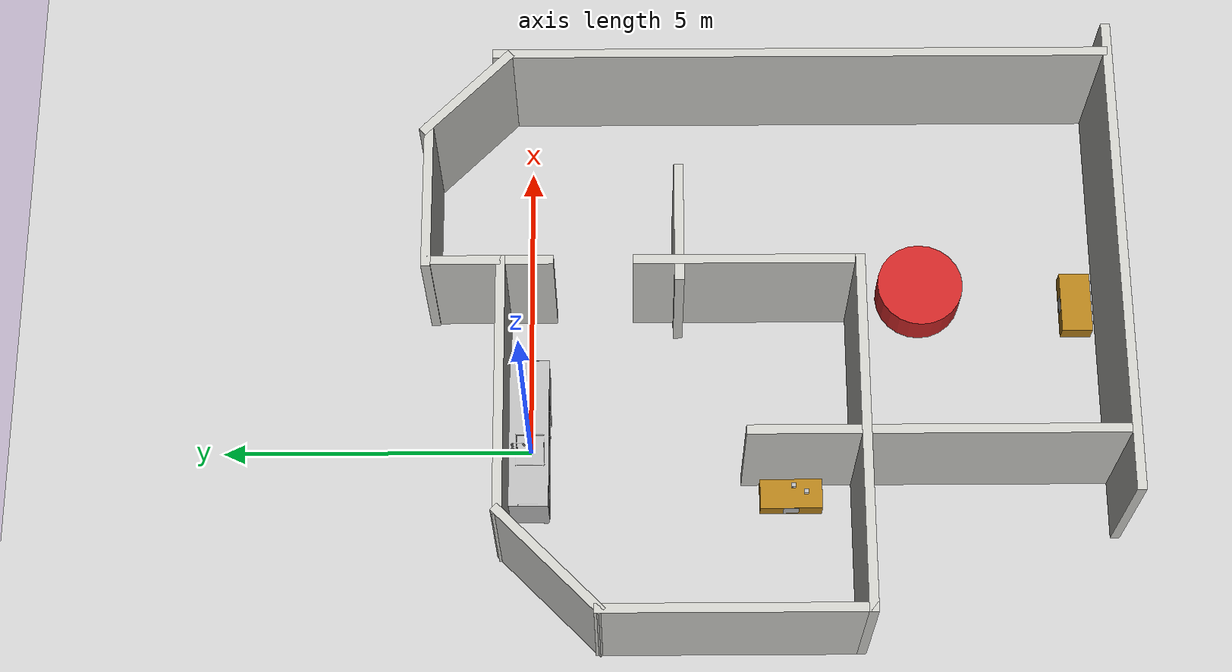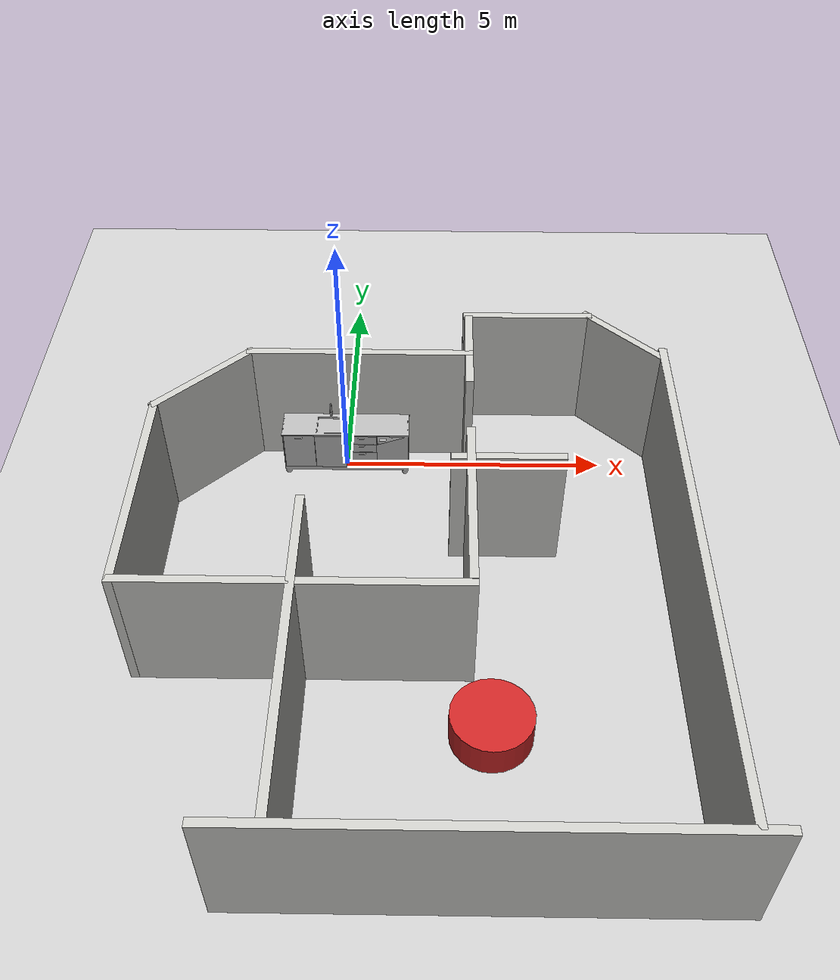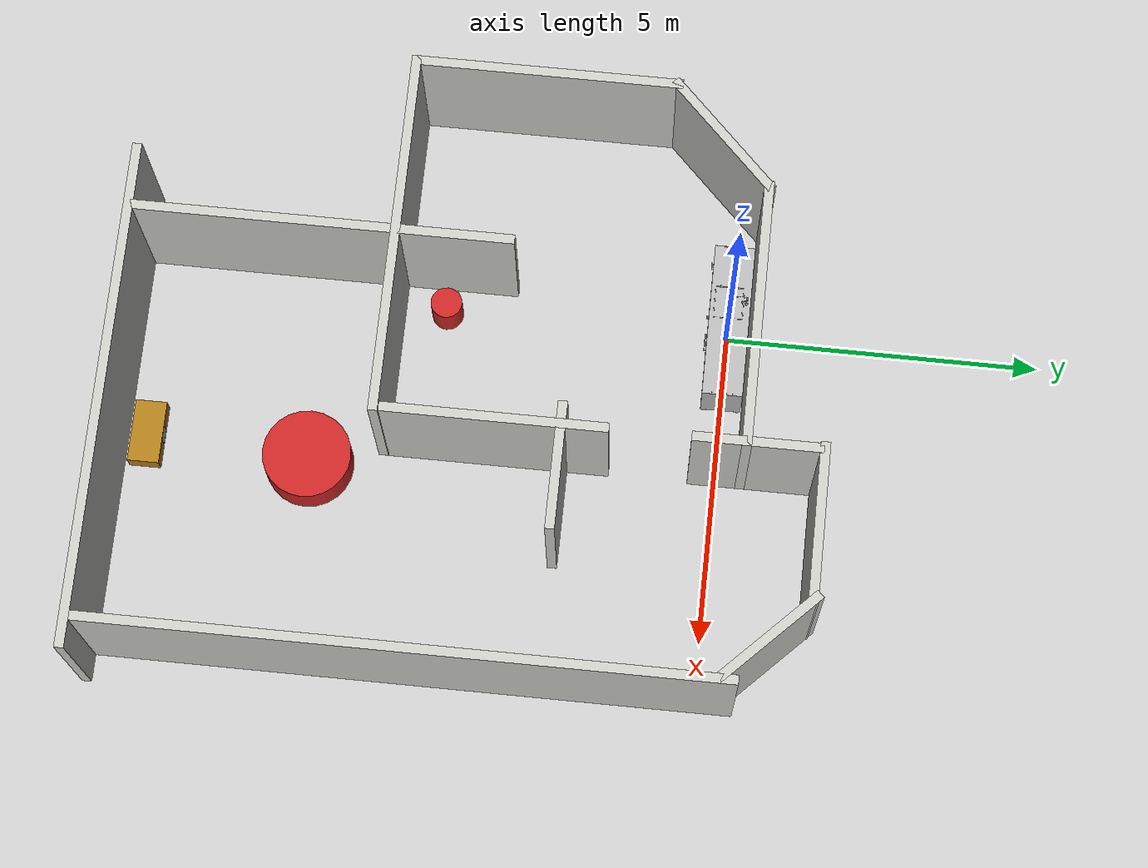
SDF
<sdf version="1.7">
 <world name="default">
  <model name="ground_plane">
   <static>1</static>
   <link name="link">
    <collision name="collision">
     <geometry><plane><normal>0 0 1</normal><size>100 100</size></plane></geometry>
     <surface>
      <contact><collide_bitmask>65535</collide_bitmask></contact>
      <friction><ode><mu>100</mu><mu2>50</mu2></ode></friction>
     </surface>
    </collision>
    <visual name="visual">
     <cast_shadows>0</cast_shadows>
     <geometry><plane><normal>0 0 1</normal><size>100 100</size></plane></geometry>
     <material>
      <script><uri>file://media/materials/scripts/gazebo.material</uri><name>Gazebo/Grey</name></script>
     </material>
    </visual>
   </link>
  </model>
  <light name="sun" type="directional">
   <pose>0 0 10 0 -0 0</pose>
   <diffuse>0.8 0.8 0.8 1</diffuse>
   <specular>0.2 0.2 0.2 1</specular>
   <attenuation>
    <range>1000</range>
    <constant>0.9</constant>
    <linear>0.01</linear>
    <quadratic>0.001</quadratic>
   </attenuation>
   <direction>-0.5 0.1 -0.9</direction>
   <spot><inner_angle>0</inner_angle><outer_angle>0</outer_angle><falloff>0</falloff></spot>
  </light>
  <gravity>0 0 -9.81</gravity>
  <magnetic_field>6e-06 2.3e-05 -4.2e-05</magnetic_field>
  <atmosphere type="adiabatic"/>
  <physics type="ode">
   <max_step_size>0.001</max_step_size>
   <real_time_factor>1</real_time_factor>
   <real_time_update_rate>1000</real_time_update_rate>
  </physics>
  <scene><ambient>0.4 0.4 0.4 1</ambient><background>0.7 0.7 0.7 1</background><shadows>1</shadows></scene>
  <spherical_coordinates>
   <surface_model>EARTH_WGS84</surface_model>
   <latitude_deg>0</latitude_deg>
   <longitude_deg>0</longitude_deg>
   <elevation>0</elevation>
   <heading_deg>0</heading_deg>
  </spherical_coordinates>
  <model name="sink_furniture">
   <joint name="base_joint" type="fixed">
    <pose relative_to="__model__">0 0 0.01 0 -0 0</pose>
    <parent>world</parent>
    <child>base_link</child>
   </joint>
   <link name="base_link">
    <pose relative_to="base_joint">0 0 0 0 -0 0</pose>
    <inertial>
     <pose>0.341839 0.004907 0.283661 0 -0 0</pose>
     <mass>80</mass>
     <inertia>
      <ixx>13.1429</ixx>
      <ixy>-0.127112</ixy>
      <ixz>-12.9504</ixz>
      <iyy>28.0802</iyy>
      <iyz>-0.0874853</iyz>
      <izz>17.9537</izz>
     </inertia>
    </inertial>
    <collision name="base_link_collision">
     <pose>0 0 0 1.5714 -0 0</pose>
     <geometry>
      <mesh><scale>100 100 100</scale><uri>model://sink_furniture/meshes/kitchen_only_kitchen.obj</uri></mesh>
     </geometry>
    </collision>
    <collision name="base_link_fixed_joint_lump__washer_link_collision_1">
     <pose>-0.09 0.001 0.581 1.5714 -0 0</pose>
     <geometry>
      <mesh><scale>1 1 1</scale><uri>model://sink_furniture/meshes/kitchen_only_lavadora.obj</uri></mesh>
     </geometry>
    </collision>
    <visual name="base_link_visual">
     <pose>0 0 0 1.5714 -0 0</pose>
     <geometry>
      <mesh><scale>100 100 100</scale><uri>model://sink_furniture/meshes/kitchen_only_kitchen.obj</uri></mesh>
     </geometry>
    </visual>
    <visual name="base_link_fixed_joint_lump__washer_link_visual_1">
     <pose>-0.09 0.001 0.581 1.5714 -0 0</pose>
     <geometry>
      <mesh><scale>1 1 1</scale><uri>model://sink_furniture/meshes/kitchen_only_lavadora.obj</uri></mesh>
     </geometry>
    </visual>
   </link>
   <joint name="dishrack_1_joint" type="prismatic">
    <pose relative_to="base_link">-0.897 0.035 0.49 0 -0 0</pose>
    <parent>base_link</parent>
    <child>dishrack_1_link</child>
    <axis>
     <xyz>0 -1 0</xyz>
     <limit><lower>0</lower><upper>0.5</upper><effort>0</effort><velocity>0</velocity></limit>
     <dynamics>
      <damping>0.5</damping>
      <friction>1</friction>
      <spring_reference>0</spring_reference>
      <spring_stiffness>0</spring_stiffness>
     </dynamics>
    </axis>
   </joint>
   <link name="dishrack_1_link">
    <pose relative_to="dishrack_1_joint">0 0 0 0 -0 0</pose>
    <inertial>
     <pose>-0 0.001017 0.024848 0 -0 0</pose>
     <mass>5</mass>
     <inertia>
      <ixx>0.0896811</ixx>
      <ixy>-4.20102e-09</ixy>
      <ixz>-2.01219e-09</ixz>
      <iyy>0.141374</iyy>
      <iyz>-0.0042403</iyz>
      <izz>0.0985203</izz>
     </inertia>
    </inertial>
    <collision name="dishrack_1_link_collision">
     <pose>0 0 0 1.5714 -0 0</pose>
     <geometry>
      <mesh>
       <scale>1 1 1</scale>
       <uri>model://sink_furniture/meshes/kitchen_only_parte_de_abajo_lavavajillas.obj</uri>
      </mesh>
     </geometry>
    </collision>
    <collision name="dishrack_1_link_fixed_joint_lump__silverware_link_collision_1">
     <pose>0 -0.01 0.05 1.5714 -0 0</pose>
     <geometry>
      <mesh>
       <scale>1 1 1</scale>
       <uri>model://sink_furniture/meshes/kitchen_only_cubiertos_lavavajillas.obj</uri>
      </mesh>
     </geometry>
    </collision>
    <visual name="dishrack_1_link_visual">
     <pose>0 0 0 1.5714 -0 0</pose>
     <geometry>
      <mesh>
       <scale>1 1 1</scale>
       <uri>model://sink_furniture/meshes/kitchen_only_parte_de_abajo_lavavajillas.obj</uri>
      </mesh>
     </geometry>
    </visual>
    <visual name="dishrack_1_link_fixed_joint_lump__silverware_link_visual_1">
     <pose>0 -0.01 0.05 1.5714 -0 0</pose>
     <geometry>
      <mesh>
       <scale>1 1 1</scale>
       <uri>model://sink_furniture/meshes/kitchen_only_cubiertos_lavavajillas.obj</uri>
      </mesh>
     </geometry>
    </visual>
   </link>
   <joint name="dishrack_2_joint" type="prismatic">
    <pose relative_to="base_link">-0.897 0.035 0.792 0 -0 0</pose>
    <parent>base_link</parent>
    <child>dishrack_2_link</child>
    <axis>
     <xyz>0 -1 0</xyz>
     <limit><lower>0</lower><upper>0.5</upper><effort>0</effort><velocity>0</velocity></limit>
     <dynamics>
      <damping>0.5</damping>
      <friction>1</friction>
      <spring_reference>0</spring_reference>
      <spring_stiffness>0</spring_stiffness>
     </dynamics>
    </axis>
   </joint>
   <link name="dishrack_2_link">
    <pose relative_to="dishrack_2_joint">0 0 0 0 -0 0</pose>
    <inertial>
     <pose>0.008706 -0.004417 0.026342 0 -0 0</pose>
     <mass>3</mass>
     <inertia>
      <ixx>0.0695101</ixx>
      <ixy>2.372e-05</ixy>
      <ixz>4.623e-05</ixz>
      <iyy>0.128744</iyy>
      <iyz>0.00035407</iyz>
      <izz>0.0707099</izz>
     </inertia>
    </inertial>
    <collision name="dishrack_2_link_collision">
     <pose>0 0 0 1.5714 -0 0</pose>
     <geometry>
      <mesh>
       <scale>1 1 1</scale>
       <uri>model://sink_furniture/meshes/kitchen_only_parte_de_arriba_lavavajillas.obj</uri>
      </mesh>
     </geometry>
    </collision>
    <visual name="dishrack_2_link_visual">
     <pose>0 0 0 1.5714 -0 0</pose>
     <geometry>
      <mesh>
       <scale>1 1 1</scale>
       <uri>model://sink_furniture/meshes/kitchen_only_parte_de_arriba_lavavajillas.obj</uri>
      </mesh>
     </geometry>
    </visual>
   </link>
   <joint name="door_1_joint" type="revolute">
    <pose relative_to="base_link">-0.596 -0.325 0.594 0 -0 0</pose>
    <parent>base_link</parent>
    <child>door_1_link</child>
    <axis>
     <xyz>0 0 -1</xyz>
     <limit><lower>0</lower><upper>2</upper><effort>0</effort><velocity>0</velocity></limit>
     <dynamics>
      <damping>0.5</damping>
      <friction>1</friction>
      <spring_reference>0</spring_reference>
      <spring_stiffness>0</spring_stiffness>
     </dynamics>
    </axis>
   </joint>
   <link name="door_1_link">
    <pose relative_to="door_1_joint">0 0 0 0 -0 0</pose>
    <inertial>
     <pose>0.234309 0.296772 0.013344 0 -0 0</pose>
     <mass>3</mass>
     <inertia>
      <ixx>0.146762</ixx>
      <ixy>-0.00813386</ixy>
      <ixz>-0.00130403</ixz>
      <iyy>0.079376</iyy>
      <iyz>-0.00166311</iyz>
      <izz>0.225484</izz>
     </inertia>
    </inertial>
    <collision name="door_1_link_collision">
     <pose>0.3 0 0 1.5714 -0 0</pose>
     <geometry>
      <mesh><scale>1 1 1</scale><uri>model://sink_furniture/meshes/kitchen_only_armario_lavamanos.obj</uri></mesh>
     </geometry>
    </collision>
    <visual name="door_1_link_visual">
     <pose>0.3 0 0 1.5714 -0 0</pose>
     <geometry>
      <mesh><scale>1 1 1</scale><uri>model://sink_furniture/meshes/kitchen_only_armario_lavamanos.obj</uri></mesh>
     </geometry>
    </visual>
   </link>
   <joint name="door_2_joint" type="revolute">
    <pose relative_to="base_link">-0.899 -0.293 0.34 0 -0 0</pose>
    <parent>base_link</parent>
    <child>door_2_link</child>
    <axis>
     <xyz>1 0 0</xyz>
     <limit><lower>0</lower><upper>1.6</upper><effort>0</effort><velocity>0</velocity></limit>
     <dynamics>
      <damping>0.5</damping>
      <friction>1</friction>
      <spring_reference>0</spring_reference>
      <spring_stiffness>0</spring_stiffness>
     </dynamics>
    </axis>
   </joint>
   <link name="door_2_link">
    <pose relative_to="door_2_joint">0 0 0 0 -0 0</pose>
    <inertial>
     <pose>0 0.354086 0.044429 0 -0 0</pose>
     <mass>8</mass>
     <inertia>
      <ixx>0.430657</ixx>
      <ixy>0</ixy>
      <ixz>0</ixz>
      <iyy>0.231769</iyy>
      <iyz>-0.00532904</iyz>
      <izz>0.650277</izz>
     </inertia>
    </inertial>
    <collision name="door_2_link_collision">
     <pose>0 0 0.254 1.5714 -0 0</pose>
     <geometry>
      <mesh><scale>1 1 1</scale><uri>model://sink_furniture/meshes/kitchen_only_puerta_lavavajillas.obj</uri></mesh>
     </geometry>
    </collision>
    <visual name="door_2_link_visual">
     <pose>0 0 0.254 1.5714 -0 0</pose>
     <geometry>
      <mesh><scale>1 1 1</scale><uri>model://sink_furniture/meshes/kitchen_only_puerta_lavavajillas.obj</uri></mesh>
     </geometry>
    </visual>
   </link>
   <joint name="drawer_1_joint" type="prismatic">
    <pose relative_to="base_link">0.305 -0.068 0.895 0 -0 0</pose>
    <parent>base_link</parent>
    <child>drawer_1_link</child>
    <axis>
     <xyz>0 -1 0</xyz>
     <limit><lower>0</lower><upper>0.4</upper><effort>100</effort><velocity>100</velocity></limit>
     <dynamics>
      <damping>0.5</damping>
      <friction>1</friction>
      <spring_reference>0</spring_reference>
      <spring_stiffness>0</spring_stiffness>
     </dynamics>
    </axis>
   </joint>
   <link name="drawer_1_link">
    <pose relative_to="drawer_1_joint">0 0 0 0 -0 0</pose>
    <inertial>
     <pose>0.005449 0.058284 0.255974 0 -0 0</pose>
     <mass>5</mass>
     <inertia>
      <ixx>0.133959</ixx>
      <ixy>6e-06</ixy>
      <ixz>0.00125108</ixz>
      <iyy>0.259147</iyy>
      <iyz>-0.00124005</iyz>
      <izz>0.149073</izz>
     </inertia>
    </inertial>
    <collision name="drawer_1_link_collision">
     <pose>0 0 0 1.5714 -0 0</pose>
     <geometry>
      <mesh><scale>1 1 1</scale><uri>model://sink_furniture/meshes/kitchen_only_cajon_1.obj</uri></mesh>
     </geometry>
    </collision>
    <visual name="drawer_1_link_visual">
     <pose>0 0 0 1.5714 -0 0</pose>
     <geometry>
      <mesh><scale>1 1 1</scale><uri>model://sink_furniture/meshes/kitchen_only_cajon_1.obj</uri></mesh>
     </geometry>
    </visual>
   </link>
   <joint name="drawer_2_joint" type="prismatic">
    <pose relative_to="base_link">0.305 -0.068 0.694 0 -0 0</pose>
    <parent>base_link</parent>
    <child>drawer_2_link</child>
    <axis>
     <xyz>0 -1 0</xyz>
     <limit><lower>0</lower><upper>0.4</upper><effort>0</effort><velocity>0</velocity></limit>
     <dynamics><spring_reference>0</spring_reference><spring_stiffness>0</spring_stiffness></dynamics>
    </axis>
   </joint>
   <link name="drawer_2_link">
    <pose relative_to="drawer_2_joint">0 0 0 0 -0 0</pose>
    <inertial>
     <pose>0.005449 0.060122 0.255974 0 -0 0</pose>
     <mass>5</mass>
     <inertia>
      <ixx>0.133965</ixx>
      <ixy>5.99e-06</ixy>
      <ixz>0.00125106</ixz>
      <iyy>0.259148</iyy>
      <iyz>-0.00126118</iyz>
      <izz>0.149077</izz>
     </inertia>
    </inertial>
    <collision name="drawer_2_link_collision">
     <pose>0 0 0 1.5714 -0 0</pose>
     <geometry>
      <mesh><scale>1 1 1</scale><uri>model://sink_furniture/meshes/kitchen_only_cajon_2.obj</uri></mesh>
     </geometry>
    </collision>
    <visual name="drawer_2_link_visual">
     <pose>0 0 0 1.5714 -0 0</pose>
     <geometry>
      <mesh><scale>1 1 1</scale><uri>model://sink_furniture/meshes/kitchen_only_cajon_2.obj</uri></mesh>
     </geometry>
    </visual>
   </link>
   <joint name="drawer_3_joint" type="prismatic">
    <pose relative_to="base_link">0.311 -0.068 0.392 0 -0 0</pose>
    <parent>base_link</parent>
    <child>drawer_3_link</child>
    <axis>
     <xyz>0 -1 0</xyz>
     <limit><lower>0</lower><upper>0.4</upper><effort>0</effort><velocity>0</velocity></limit>
     <dynamics>
      <damping>0.5</damping>
      <friction>1</friction>
      <spring_reference>0</spring_reference>
      <spring_stiffness>0</spring_stiffness>
     </dynamics>
    </axis>
   </joint>
   <link name="drawer_3_link">
    <pose relative_to="drawer_3_joint">0 0 0 0 -0 0</pose>
    <inertial>
     <pose>0.005449 0.146757 0.255974 0 -0 0</pose>
     <mass>7</mass>
     <inertia>
      <ixx>0.229778</ixx>
      <ixy>0.00021958</ixy>
      <ixz>0.00169859</ixz>
      <iyy>0.358769</iyy>
      <iyz>-0.0238841</iyz>
      <izz>0.256006</izz>
     </inertia>
    </inertial>
    <collision name="drawer_3_link_collision">
     <pose>0 0 0 1.5714 -0 0</pose>
     <geometry>
      <mesh><scale>1 1 1</scale><uri>model://sink_furniture/meshes/kitchen_only_cajon_grande.obj</uri></mesh>
     </geometry>
    </collision>
    <visual name="drawer_3_link_visual">
     <pose>0 0 0 1.5714 -0 0</pose>
     <geometry>
      <mesh><scale>1 1 1</scale><uri>model://sink_furniture/meshes/kitchen_only_cajon_grande.obj</uri></mesh>
     </geometry>
    </visual>
   </link>
  </model>
  <model name="kitchen_no_sink_walls">
   <pose>-0.487707 -2.40386 0 0 -0 0</pose>
   <link name="Wall_0">
    <collision name="Wall_0_Collision">
     <geometry><box><size>4.27 0.15 2.5</size></box></geometry>
     <pose>0 0 1.25 0 -0 0</pose>
    </collision>
    <visual name="Wall_0_Visual">
     <pose>0 0 1.25 0 -0 0</pose>
     <geometry><box><size>4.27 0.15 2.5</size></box></geometry>
     <material>
      <script><uri>file://media/materials/scripts/gazebo.material</uri><name>Gazebo/CeilingTiled</name></script>
      <ambient>1 1 1 1</ambient>
     </material>
     <meta><layer>0</layer></meta>
    </visual>
    <pose>-2.82197 -0.790533 0 0 -0 1.5708</pose>
   </link>
   <link name="Wall_11">
    <collision name="Wall_11_Collision">
     <geometry><box><size>2.34557 0.15 2.5</size></box></geometry>
     <pose>0 0 1.25 0 -0 0</pose>
    </collision>
    <visual name="Wall_11_Visual">
     <pose>0 0 1.25 0 -0 0</pose>
     <geometry><box><size>2.34557 0.15 2.5</size></box></geometry>
     <material>
      <script><uri>file://media/materials/scripts/gazebo.material</uri><name>Gazebo/CeilingTiled</name></script>
      <ambient>1 1 1 1</ambient>
     </material>
     <meta><layer>0</layer></meta>
    </visual>
    <pose>-2.04447 2.04447 0 0 -0 0.783788</pose>
   </link>
   <link name="Wall_4">
    <collision name="Wall_4_Collision">
     <geometry><box><size>5.825 0.15 2.5</size></box></geometry>
     <pose>0 0 1.25 0 -0 0</pose>
    </collision>
    <visual name="Wall_4_Visual">
     <pose>0 0 1.25 0 -0 0</pose>
     <geometry><box><size>5.825 0.15 2.5</size></box></geometry>
     <material>
      <script><uri>file://media/materials/scripts/gazebo.material</uri><name>Gazebo/CeilingTiled</name></script>
      <ambient>1 1 1 1</ambient>
     </material>
     <meta><layer>0</layer></meta>
    </visual>
    <pose>0.015533 -2.85053 0 0 -0 0</pose>
   </link>
   <link name="Wall_7">
    <collision name="Wall_7_Collision">
     <geometry><box><size>3.5 0.15 2.5</size></box></geometry>
     <pose>-1 0 1.25 0 -0 0</pose>
    </collision>
    <visual name="Wall_7_Visual">
     <pose>-1 0 1.25 0 -0 0</pose>
     <geometry><box><size>3.5 0.15 2.5</size></box></geometry>
     <material>
      <script><uri>file://media/materials/scripts/gazebo.material</uri><name>Gazebo/CeilingTiled</name></script>
      <ambient>1 1 1 1</ambient>
     </material>
     <meta><layer>0</layer></meta>
    </visual>
    <pose>2.85303 -0.015533 0 0 -0 1.5708</pose>
   </link>
   <link name="Wall_8">
    <collision name="Wall_8_Collision">
     <geometry><box><size>2 0.15 2.5</size></box></geometry>
     <pose>3 0 1.25 0 -0 0</pose>
    </collision>
    <visual name="Wall_8_Visual">
     <pose>3 0 1.25 0 -0 0</pose>
     <geometry><box><size>2 0.15 2.5</size></box></geometry>
     <material>
      <script><uri>file://media/materials/scripts/gazebo.material</uri><name>Gazebo/CeilingTiled</name></script>
      <ambient>1 1 1 1</ambient>
     </material>
     <meta><layer>0</layer></meta>
    </visual>
    <pose>2.85303 -0.015533 0 0 -0 1.5708</pose>
   </link>
   <link name="Wall_9">
    <collision name="Wall_9_Collision">
     <geometry><box><size>4.27 0.15 2.5</size></box></geometry>
     <pose>0 0 1.25 0 -0 0</pose>
    </collision>
    <visual name="Wall_9_Visual">
     <pose>0 0 1.25 0 -0 0</pose>
     <geometry><box><size>4.27 0.15 2.5</size></box></geometry>
     <material>
      <script><uri>file://media/materials/scripts/gazebo.material</uri><name>Gazebo/CeilingTiled</name></script>
      <ambient>1 1 1 1</ambient>
     </material>
     <meta><layer>0</layer></meta>
    </visual>
    <pose>0.793033 2.81947 0 0 -0 3.14159</pose>
   </link>
   <link name="Wall_20">
    <collision name="Wall_20_Collision">
     <geometry><box><size>10 0.15 2.5</size></box></geometry>
     <pose>0 0 1.25 0 -0 0</pose>
    </collision>
    <visual name="Wall_20_Visual">
     <pose>0 0 1.25 0 -0 0</pose>
     <geometry><box><size>10 0.15 2.5</size></box></geometry>
     <material>
      <script><uri>file://media/materials/scripts/gazebo.material</uri><name>Gazebo/CeilingTiled</name></script>
      <ambient>1 1 1 1</ambient>
     </material>
     <meta><layer>0</layer></meta>
    </visual>
    <pose>6.5 -2.0 0 0 0 1.5708</pose>
   </link>
   <link name="Wall_21">
    <collision name="Wall_21_Collision">
     <geometry><box><size>2.5 0.15 2.5</size></box></geometry>
     <pose>0 0 1.25 0 -0 0</pose>
    </collision>
    <visual name="Wall_21_Visual">
     <pose>0 0 1.25 0 -0 0</pose>
     <geometry><box><size>2.5 0.15 2.5</size></box></geometry>
     <material>
      <script><uri>file://media/materials/scripts/gazebo.material</uri><name>Gazebo/CeilingTiled</name></script>
      <ambient>1 1 1 1</ambient>
     </material>
     <meta><layer>0</layer></meta>
    </visual>
    <pose>4 4.0 0 0 -0 0</pose>
   </link>
   <link name="Wall_22">
    <collision name="Wall_22_Collision">
     <geometry><box><size>2 0.15 2.5</size></box></geometry>
     <pose>0 0 1.25 0 -0 0</pose>
    </collision>
    <visual name="Wall_22_Visual">
     <pose>0 0 1.25 0 -0 0</pose>
     <geometry><box><size>2 0.15 2.5</size></box></geometry>
     <material>
      <script><uri>file://media/materials/scripts/gazebo.material</uri><name>Gazebo/CeilingTiled</name></script>
      <ambient>1 1 1 1</ambient>
     </material>
     <meta><layer>0</layer></meta>
    </visual>
    <pose>5.8 3.4 0 0 -0 -0.783788</pose>
   </link>
   <link name="Wall_23">
    <collision name="Wall_23_Collision">
     <geometry><box><size>8.0 0.15 2.5</size></box></geometry>
     <pose>0 0 1.25 0 -0 0</pose>
    </collision>
    <visual name="Wall_23_Visual">
     <pose>0 0 1.25 0 -0 0</pose>
     <geometry><box><size>8.0 0.15 2.5</size></box></geometry>
     <material>
      <script><uri>file://media/materials/scripts/gazebo.material</uri><name>Gazebo/CeilingTiled</name></script>
      <ambient>1 1 1 1</ambient>
     </material>
     <meta><layer>0</layer></meta>
    </visual>
    <pose>3 -7.0 0 0 -0 0</pose>
   </link>
   <link name="Wall_24">
    <collision name="Wall_24_Collision">
     <geometry><box><size>6 0.15 2.5</size></box></geometry>
     <pose>0 0 1.25 0 -0 0</pose>
    </collision>
    <visual name="Wall_24_Visual">
     <pose>0 0 1.25 0 -0 0</pose>
     <geometry><box><size>6 0.15 2.5</size></box></geometry>
     <material>
      <script><uri>file://media/materials/scripts/gazebo.material</uri><name>Gazebo/CeilingTiled</name></script>
      <ambient>1 1 1 1</ambient>
     </material>
     <meta><layer>0</layer></meta>
    </visual>
    <pose>0 -4.0 0 0 -0 1.5709</pose>
   </link>
   <link name="Wall_30">
    <collision name="Wall_30_Collision">
     <geometry><box><size>2.0 0.15 2.5</size></box></geometry>
     <pose>0 0 1.25 0 -0 0</pose>
    </collision>
    <visual name="Wall_30_Visual">
     <pose>0 0 1.25 0 -0 0</pose>
     <geometry><box><size>2.0 0.15 2.5</size></box></geometry>
     <material>
      <script><uri>file://media/materials/scripts/gazebo.material</uri><name>Gazebo/CeilingTiled</name></script>
      <ambient>1 1 1 1</ambient>
     </material>
     <meta><layer>0</layer></meta>
    </visual>
    <pose>3.5 0.0 0 0 -0 0</pose>
   </link>
   <static>1</static>
  </model>
  <include>
   <uri>model://env_exam_pick_surface</uri>
   <pose>-0.8 -4.2 0.15 0 0 1.5709</pose>
   <static>1</static>
  </include>
  <include><uri>model://env_exam_place_surface</uri><pose>2.5 -9 0.15 0 0 0</pose><static>1</static></include>
  <include><uri>model://env_exam_cylinder1</uri><pose>.0 -4.5 0.1 0 0 0</pose><static>1</static></include>
  <include><uri>model://env_exam_cylinder2</uri><pose>2.7 -6.4 0.1 0 0 0</pose><static>1</static></include>
  <include><uri>model://aruco_cube_exam_id63</uri><pose>-0.9 -4.2 1.0 0 0 0</pose><static>0</static></include>
  <include><uri>model://aruco_cube_exam_id582</uri><pose>-1.0 -4.4 1.0 0 0 0</pose><static>0</static></include>
 </world>
</sdf>

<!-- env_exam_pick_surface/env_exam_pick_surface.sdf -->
<sdf version="1.4">
  <model name="env_exam_pick_surface">
    <static>true</static>

    <link name="link">
      <!-- Original pick surface inertial -->
      <inertial>
        <mass>1.0</mass>
        <inertia>
          <ixx>0.083</ixx>
          <ixy>0.0</ixy>
          <ixz>0.0</ixz>
          <iyy>0.083</iyy>
          <iyz>0.0</iyz>
          <izz>0.083</izz>
        </inertia>
      </inertial>

      <!-- Original pick surface collision -->
      <collision name="pick_surface_collision">
        <geometry>
          <box>
            <size>0.5 0.5 0.3</size>
          </box>
        </geometry>
      </collision>

      <!-- Original pick surface visual -->
      <visual name="pick_surface_visual">
        <material>
          <ambient>0.7 0.5 0.1 1</ambient>
          <diffuse>0.7 0.5 0.1 1</diffuse>
          <specular>0.5 0.5 0.5 1</specular>
          <emissive>0 0 0 1</emissive>
        </material>
        <geometry>
          <box>
            <size>1.0 0.5 0.3</size>
          </box>
        </geometry>
      </visual>

      <!-- ArUco marker mounted on one lateral side (+X face) -->
      <!-- Box visual for the marker -->
      <visual name="aruco_visual">
        <pose>0.0 0.25 0.0 1.5708 0 0</pose>
        <geometry>
          <box>
            <size>0.25 0.25 0.001</size>
          </box>
        </geometry>
        <material>
          <script>
	    <uri>model://aruco_marker_original_26/material/scripts</uri>
	    <uri>model://aruco_marker_original_26/material/textures</uri>
            <name>Aruco/aruco_marker_original_26</name>
          </script>
        </material>
      </visual>

      <!-- Collision for the marker -->
      <collision name="aruco_collision">
        <pose>0.5005 0 0.15 1.5708 0 0</pose>
        <geometry>
          <box>
            <size>0.25 0.25 0.001</size>
          </box>
        </geometry>
        <surface>
          <bounce/>
          <friction>
            <ode/>
          </friction>
          <contact>
            <ode/>
          </contact>
        </surface>
      </collision>

    </link>
  </model>
</sdf>

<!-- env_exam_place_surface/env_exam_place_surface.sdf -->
<sdf version="1.4">
  <model name="env_exam_place_surface">
    <static>true</static>

    <link name="link">
      <!-- Original pick surface inertial -->
      <inertial>
        <mass>1.0</mass>
        <inertia>
          <ixx>0.083</ixx>
          <ixy>0.0</ixy>
          <ixz>0.0</ixz>
          <iyy>0.083</iyy>
          <iyz>0.0</iyz>
          <izz>0.083</izz>
        </inertia>
      </inertial>

      <collision name="place_surface_collision">
        <geometry>
          <box>
            <size>0.5 0.5 0.3</size>
          </box>
        </geometry>
      </collision>

      <visual name="place_surface_visual">
        <material>
          <ambient>0.7 0.5 0.1 1</ambient>
          <diffuse>0.7 0.5 0.1 1</diffuse>
          <specular>0.5 0.5 0.5 1</specular>
          <emissive>0 0 0 1</emissive>
        </material>
        <geometry>
          <box>
            <size>1.0 0.5 0.3</size>
          </box>
        </geometry>
      </visual>

      <!-- ArUco marker mounted on one lateral side (+X face) -->
      <!-- Box visual for the marker -->
      <visual name="aruco_visual">
        <pose>0.0 0.25 0.0 1.5708 0 0</pose>
        <geometry>
          <box>
            <size>0.25 0.25 0.001</size>
          </box>
        </geometry>
        <material>
          <script>
	    <uri>model://aruco_marker_original_238/material/scripts</uri>
	    <uri>model://aruco_marker_original_238/material/textures</uri>
            <name>Aruco/aruco_marker_original_238</name>
          </script>
        </material>
      </visual>

      <!-- Collision for the marker -->
      <collision name="aruco_collision">
        <pose>0.5005 0 0.15 1.5708 0 0</pose>
        <geometry>
          <box>
            <size>0.25 0.25 0.001</size>
          </box>
        </geometry>
        <surface>
          <bounce/>
          <friction>
            <ode/>
          </friction>
          <contact>
            <ode/>
          </contact>
        </surface>
      </collision>

    </link>
  </model>
</sdf>

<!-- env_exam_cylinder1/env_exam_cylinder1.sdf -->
<sdf version="1.4">
  <model name="env_exam_cylinder1">
    <static>true</static>
    <link name="link">

    <gravity>0</gravity>

      <inertial>
        <mass>1.0</mass>
        <inertia>
          <ixx>0.00036395833</ixx> <ixy>0.0</ixy> <ixz>0.0</ixz>
          <iyy>0.00036395833</iyy> <iyz>0.0</iyz> <izz>0.0006125</izz>
        </inertia>
      </inertial>
      <visual name="visual">
        <geometry>
          <cylinder>
            <radius>0.25</radius>
            <length>1.0</length>
          </cylinder>
        </geometry>
        <material>
          <script>
            <uri>file://media/materials/scripts/gazebo.material</uri>
            <name>Gazebo/Red</name>
          </script>
        </material>
      </visual>
      <collision name="collision">
        <geometry>
          <cylinder>
            <radius>0.25</radius>
            <length>1.0</length>
        </cylinder>
        </geometry>
        <surface>
          <friction>
            <ode>
              <mu>0.0</mu>
              <mu2>0.0</mu2>
            </ode>
          </friction>
        </surface>
      </collision>

    </link>
  </model>
</sdf>

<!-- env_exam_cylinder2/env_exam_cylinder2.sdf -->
<sdf version="1.4">
  <model name="env_exam_cylinder2">
    <static>true</static>
    <link name="link">

    <gravity>0</gravity>

      <inertial>
        <mass>1.0</mass>
        <inertia>
          <ixx>0.00036395833</ixx> <ixy>0.0</ixy> <ixz>0.0</ixz>
          <iyy>0.00036395833</iyy> <iyz>0.0</iyz> <izz>0.0006125</izz>
        </inertia>
      </inertial>
      <visual name="visual">
        <geometry>
          <cylinder>
            <radius>0.7</radius>
            <length>1.0</length>
          </cylinder>
        </geometry>
        <material>
          <script>
            <uri>file://media/materials/scripts/gazebo.material</uri>
            <name>Gazebo/Red</name>
          </script>
        </material>
      </visual>
      <collision name="collision">
        <geometry>
          <cylinder>
            <radius>0.7</radius>
            <length>1.0</length>
        </cylinder>
        </geometry>
        <surface>
          <friction>
            <ode>
              <mu>0.0</mu>
              <mu2>0.0</mu2>
            </ode>
          </friction>
        </surface>
      </collision>
    </link>

  </model>
</sdf>

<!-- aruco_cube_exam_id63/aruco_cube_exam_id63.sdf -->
<sdf version="1.4">
  <model name="aruco_cube_exam_id63">
    <static>0</static>
    <link name="link">

      <inertial>
        <mass>0.05</mass>
        <inertia>
          <ixx>0.000052083</ixx>
          <ixy>0.0</ixy>
          <ixz>0.0</ixz>
          <iyy>0.000052083</iyy>
          <iyz>0.0</iyz>
          <izz>0.000020833</izz>
        </inertia>
      </inertial>

      <collision name="cube_collision">
        <geometry>
          <box>
            <size>0.07 0.07 0.07</size>
          </box>
        </geometry>

        <surface>
          <friction>
            <ode>
              <mu>30.0</mu>
              <mu2>30.0</mu2>
              <fdir1>0 0 0</fdir1>
            </ode>
          </friction>
          <contact>
            <ode>
              <kp>1000000.0</kp>
              <kd>100.0</kd>
              <min_depth>0.0025</min_depth>
              <max_vel>1.0</max_vel>
            </ode>
          </contact>
        </surface>

      </collision>

      <!-- Original pick surface visual -->
      <visual name="cube_visual">
        <material>
          <ambient>1 1 1 1</ambient>
          <diffuse>1 1 1 1</diffuse>
          <specular>0.5 0.5 0.5 1</specular>
          <emissive>0 0 0 1</emissive>
        </material>
        <geometry>
          <box>
            <size>0.07 0.07 0.07</size>
          </box>
        </geometry>
      </visual>

      <!-- ArUco marker mounted on one lateral side (+X face) -->
      <!-- Box visual for the marker -->
      <visual name="aruco_visual">
        <pose>0.0 0.0 0.035 0 0 0</pose>
        <geometry>
          <box>
            <size>0.07 0.07 0.001</size>
          </box>
        </geometry>
        <material>
          <script>
          <uri>model://aruco_marker_original_63/material/scripts</uri>
          <uri>model://aruco_marker_original_63/material/textures</uri>
                <name>Aruco/aruco_marker_original_63</name>
          </script>
        </material>
      </visual>

      <velocity_decay>
        <linear>0.000000</linear>
        <angular>0.000000</angular>
      </velocity_decay>
      <self_collide>0</self_collide>
      <kinematic>0</kinematic>
      <gravity>1</gravity>
    </link>
  </model>
</sdf>

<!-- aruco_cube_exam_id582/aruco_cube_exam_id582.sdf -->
<sdf version="1.4">
  <model name="aruco_cube_exam_id582">
    <static>0</static>
    <link name="link">

      <inertial>
        <mass>0.05</mass>
        <inertia>
          <ixx>0.000052083</ixx>
          <ixy>0.0</ixy>
          <ixz>0.0</ixz>
          <iyy>0.000052083</iyy>
          <iyz>0.0</iyz>
          <izz>0.000020833</izz>
        </inertia>
      </inertial>

      <collision name="cube_collision">
        <geometry>
          <box>
            <size>0.07 0.07 0.07</size>
          </box>
        </geometry>

        <surface>
          <friction>
            <ode>
              <mu>30.0</mu>
              <mu2>30.0</mu2>
              <fdir1>0 0 0</fdir1>
            </ode>
          </friction>
          <contact>
            <ode>
              <kp>1000000.0</kp>
              <kd>100.0</kd>
              <min_depth>0.0025</min_depth>
              <max_vel>1.0</max_vel>
            </ode>
          </contact>
        </surface>

      </collision>

      <!-- Original pick surface visual -->
      <visual name="cube_visual">
        <material>
          <ambient>1 1 1 1</ambient>
          <diffuse>1 1 1 1</diffuse>
          <specular>0.5 0.5 0.5 1</specular>
          <emissive>0 0 0 1</emissive>
        </material>
        <geometry>
          <box>
            <size>0.07 0.07 0.07</size>
          </box>
        </geometry>
      </visual>

      <!-- ArUco marker mounted on one lateral side (+X face) -->
      <!-- Box visual for the marker -->
      <visual name="aruco_visual">
        <pose>0.0 0.0 0.035 0 0 0</pose>
        <geometry>
          <box>
            <size>0.07 0.07 0.001</size>
          </box>
        </geometry>
        <material>
          <script>
          <uri>model://aruco_marker_original_582/material/scripts</uri>
          <uri>model://aruco_marker_original_582/material/textures</uri>
                <name>Aruco/aruco_marker_original_582</name>
          </script>
        </material>
      </visual>

      <velocity_decay>
        <linear>0.000000</linear>
        <angular>0.000000</angular>
      </velocity_decay>
      <self_collide>0</self_collide>
      <kinematic>0</kinematic>
      <gravity>1</gravity>
    </link>
  </model>
</sdf>
